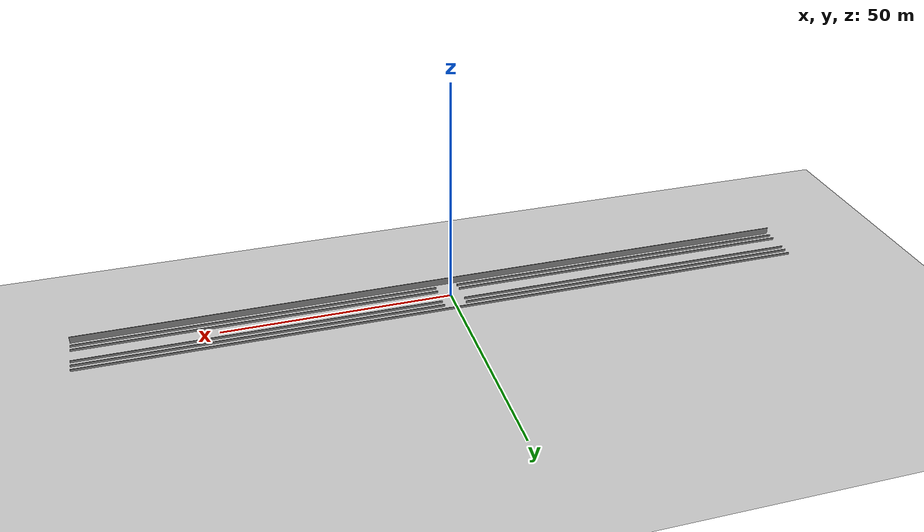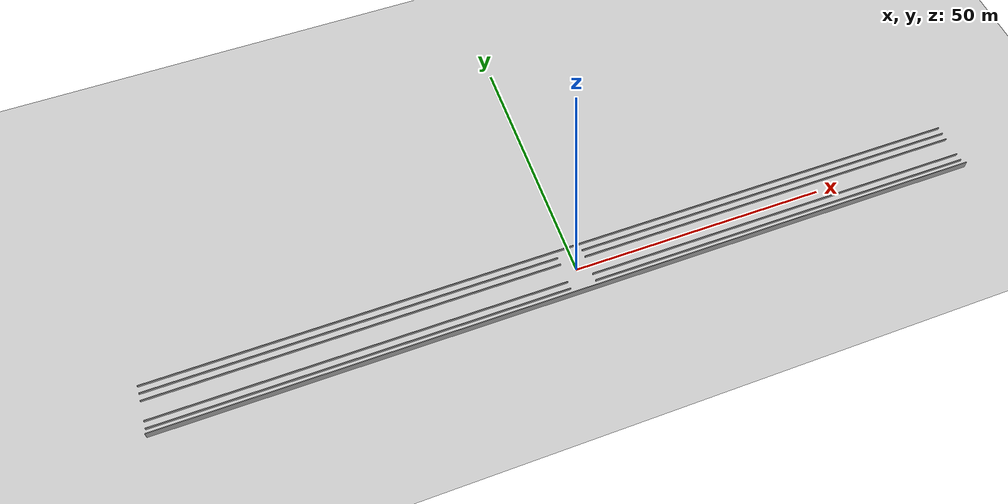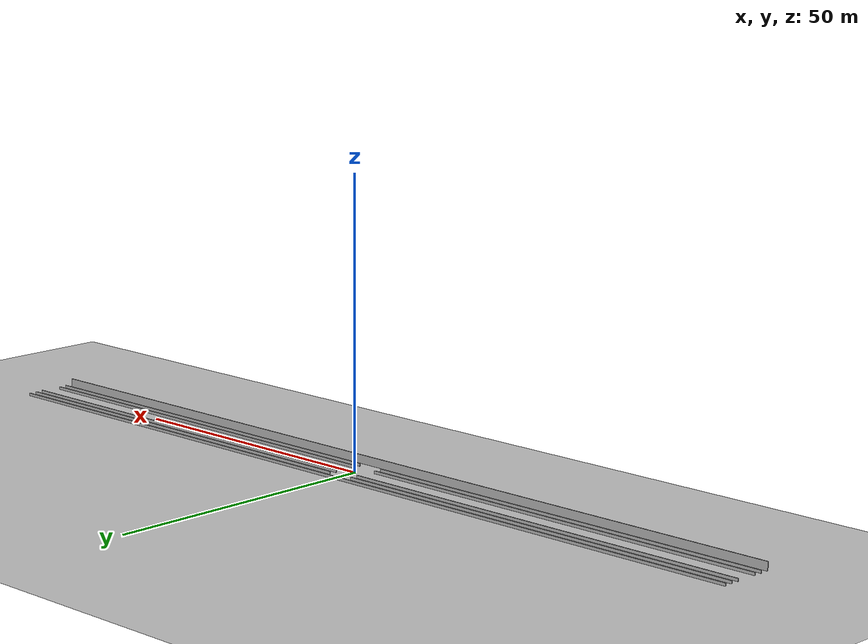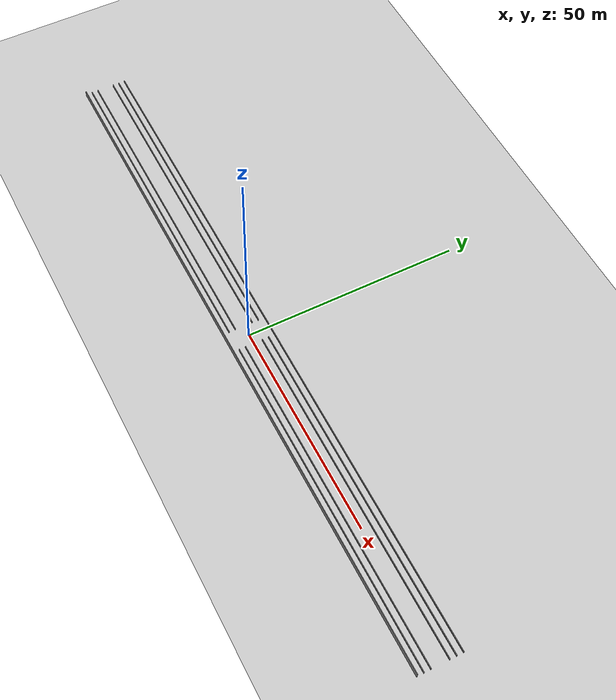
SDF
<?xml version="1.0" ?>
<sdf version="1.5">
  <world name="default">

    <!-- A global light source -->
    <include>
      <uri>model://sun</uri>
	    <pose>0 0 0 0 0 0</pose>
    </include>

    <!-- A ground plane -->
    <include>
      <uri>model://mars</uri>
      <pose>0 0 0 0 0 0</pose>
    </include>

    <include>
      <uri>model://corridor</uri>
      <pose>0 0 0 0 0 0</pose>
    </include>

    <scene>
      <sky>
        <clouds>
          <speed>50</speed>
        </clouds>
      </sky>
        <ambient>0 0 0 1.0</ambient>
        <shadows>0</shadows>
    </scene>

  </world>
</sdf>

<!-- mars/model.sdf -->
<sdf version="1.6">
<model name="mars">
  <static>true</static>
    <link name="link">
      <collision name="collision">
        <geometry>
          <plane>
            <normal>0 0 1</normal>
            <size>100 100</size>
          </plane>
        </geometry>
        <surface>
          <friction>
            <ode>
              <mu>100</mu>
              <mu2>50</mu2>
            </ode>
          </friction>
        </surface>
      </collision>
      <visual name="visual">
        <cast_shadows>false</cast_shadows>
        <geometry>
          <plane>
            <normal>0 0 1</normal>
            <size>100 100</size>
          </plane>
        </geometry>
        <material>
      <script>
        <uri>model://mars/materials/scripts</uri>
        <uri>model://mars/materials/textures</uri>
        <name>mars/Image</name>
      </script>
        </material>
      </visual>
    </link>
  </model>
</sdf>

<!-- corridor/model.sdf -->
<sdf version='1.7'>
  <model name='corridor'>
    <link name='Wall_47'>
      <pose>0 5 0 0 -0 0</pose>
      <self_collide>0</self_collide>
      <enable_wind>0</enable_wind>
      <kinematic>0</kinematic>
      <visual name='Wall_47_Visual'>
        <pose>0 0 0.25 0 -0 0</pose>
        <geometry>
          <box>
            <size>160.15 0.15 0.5</size>
          </box>
        </geometry>
        <material>
          <script>
            <uri>file://media/materials/scripts/gazebo.material</uri>
            <name>Gazebo/Grey</name>
          </script>
          <ambient>1 1 1 1</ambient>
          <shader type='pixel'/>
        </material>
        <meta>
          <layer>0</layer>
        </meta>
        <transparency>0</transparency>
        <cast_shadows>1</cast_shadows>
      </visual>
      <collision name='Wall_47_Collision'>
        <laser_retro>0</laser_retro>
        <max_contacts>10</max_contacts>
        <pose>0 0 0.25 0 -0 0</pose>
        <geometry>
          <box>
            <size>160.15 0.15 0.5</size>
          </box>
        </geometry>
        <surface>
          <friction>
            <ode>
              <mu>1</mu>
              <mu2>1</mu2>
              <fdir1>0 0 0</fdir1>
              <slip1>0</slip1>
              <slip2>0</slip2>
            </ode>
            <torsional>
              <coefficient>1</coefficient>
              <patch_radius>0</patch_radius>
              <surface_radius>0</surface_radius>
              <use_patch_radius>1</use_patch_radius>
              <ode>
                <slip>0</slip>
              </ode>
            </torsional>
          </friction>
          <bounce>
            <restitution_coefficient>0</restitution_coefficient>
            <threshold>1e+06</threshold>
          </bounce>
          <contact>
            <collide_without_contact>0</collide_without_contact>
            <collide_without_contact_bitmask>1</collide_without_contact_bitmask>
            <collide_bitmask>1</collide_bitmask>
            <ode>
              <soft_cfm>0</soft_cfm>
              <soft_erp>0.2</soft_erp>
              <kp>1e+13</kp>
              <kd>1</kd>
              <max_vel>0.01</max_vel>
              <min_depth>0</min_depth>
            </ode>
            <bullet>
              <split_impulse>1</split_impulse>
              <split_impulse_penetration_threshold>-0.01</split_impulse_penetration_threshold>
              <soft_cfm>0</soft_cfm>
              <soft_erp>0.2</soft_erp>
              <kp>1e+13</kp>
              <kd>1</kd>
            </bullet>
          </contact>
        </surface>
      </collision>
    </link>
    <link name='Wall_49'>
      <pose>0 -5 0 0 -0 0</pose>
      <self_collide>0</self_collide>
      <enable_wind>0</enable_wind>
      <kinematic>0</kinematic>
      <visual name='Wall_49_Visual'>
        <pose>0 0 0.75 0 -0 0</pose>
        <geometry>
          <box>
            <size>160.15 0.15 1.5</size>
          </box>
        </geometry>
        <material>
          <script>
            <uri>file://media/materials/scripts/gazebo.material</uri>
            <name>Gazebo/Grey</name>
          </script>
          <ambient>1 1 1 1</ambient>
          <shader type='pixel'/>
        </material>
        <meta>
          <layer>0</layer>
        </meta>
        <transparency>0</transparency>
        <cast_shadows>1</cast_shadows>
      </visual>
      <collision name='Wall_49_Collision'>
        <laser_retro>0</laser_retro>
        <max_contacts>10</max_contacts>
        <pose>0 0 0.75 0 -0 0</pose>
        <geometry>
          <box>
            <size>160.15 0.15 1.5</size>
          </box>
        </geometry>
        <surface>
          <friction>
            <ode>
              <mu>1</mu>
              <mu2>1</mu2>
              <fdir1>0 0 0</fdir1>
              <slip1>0</slip1>
              <slip2>0</slip2>
            </ode>
            <torsional>
              <coefficient>1</coefficient>
              <patch_radius>0</patch_radius>
              <surface_radius>0</surface_radius>
              <use_patch_radius>1</use_patch_radius>
              <ode>
                <slip>0</slip>
              </ode>
            </torsional>
          </friction>
          <bounce>
            <restitution_coefficient>0</restitution_coefficient>
            <threshold>1e+06</threshold>
          </bounce>
          <contact>
            <collide_without_contact>0</collide_without_contact>
            <collide_without_contact_bitmask>1</collide_without_contact_bitmask>
            <collide_bitmask>1</collide_bitmask>
            <ode>
              <soft_cfm>0</soft_cfm>
              <soft_erp>0.2</soft_erp>
              <kp>1e+13</kp>
              <kd>1</kd>
              <max_vel>0.01</max_vel>
              <min_depth>0</min_depth>
            </ode>
            <bullet>
              <split_impulse>1</split_impulse>
              <split_impulse_penetration_threshold>-0.01</split_impulse_penetration_threshold>
              <soft_cfm>0</soft_cfm>
              <soft_erp>0.2</soft_erp>
              <kp>1e+13</kp>
              <kd>1</kd>
            </bullet>
          </contact>
        </surface>
      </collision>
    </link>
    <link name='Wall_51'>
      <pose>-41.25 2 0 0 -0 0</pose>
      <self_collide>0</self_collide>
      <enable_wind>0</enable_wind>
      <kinematic>0</kinematic>
      <visual name='Wall_51_Visual'>
        <pose>0 0 0.25 0 -0 0</pose>
        <geometry>
          <box>
            <size>77.65 0.15 0.5</size>
          </box>
        </geometry>
        <material>
          <script>
            <uri>file://media/materials/scripts/gazebo.material</uri>
            <name>Gazebo/Grey</name>
          </script>
          <ambient>1 1 1 1</ambient>
          <shader type='pixel'/>
        </material>
        <meta>
          <layer>0</layer>
        </meta>
        <transparency>0</transparency>
        <cast_shadows>1</cast_shadows>
      </visual>
      <collision name='Wall_51_Collision'>
        <laser_retro>0</laser_retro>
        <max_contacts>10</max_contacts>
        <pose>0 0 0.25 0 -0 0</pose>
        <geometry>
          <box>
            <size>77.65 0.15 0.5</size>
          </box>
        </geometry>
        <surface>
          <friction>
            <ode>
              <mu>1</mu>
              <mu2>1</mu2>
              <fdir1>0 0 0</fdir1>
              <slip1>0</slip1>
              <slip2>0</slip2>
            </ode>
            <torsional>
              <coefficient>1</coefficient>
              <patch_radius>0</patch_radius>
              <surface_radius>0</surface_radius>
              <use_patch_radius>1</use_patch_radius>
              <ode>
                <slip>0</slip>
              </ode>
            </torsional>
          </friction>
          <bounce>
            <restitution_coefficient>0</restitution_coefficient>
            <threshold>1e+06</threshold>
          </bounce>
          <contact>
            <collide_without_contact>0</collide_without_contact>
            <collide_without_contact_bitmask>1</collide_without_contact_bitmask>
            <collide_bitmask>1</collide_bitmask>
            <ode>
              <soft_cfm>0</soft_cfm>
              <soft_erp>0.2</soft_erp>
              <kp>1e+13</kp>
              <kd>1</kd>
              <max_vel>0.01</max_vel>
              <min_depth>0</min_depth>
            </ode>
            <bullet>
              <split_impulse>1</split_impulse>
              <split_impulse_penetration_threshold>-0.01</split_impulse_penetration_threshold>
              <soft_cfm>0</soft_cfm>
              <soft_erp>0.2</soft_erp>
              <kp>1e+13</kp>
              <kd>1</kd>
            </bullet>
          </contact>
        </surface>
      </collision>
    </link>
    <link name='Wall_53'>
      <pose>41.25 2 0 0 -0 0</pose>
      <self_collide>0</self_collide>
      <enable_wind>0</enable_wind>
      <kinematic>0</kinematic>
      <visual name='Wall_53_Visual'>
        <pose>0 0 0.25 0 -0 0</pose>
        <geometry>
          <box>
            <size>77.65 0.15 0.5</size>
          </box>
        </geometry>
        <material>
          <script>
            <uri>file://media/materials/scripts/gazebo.material</uri>
            <name>Gazebo/Grey</name>
          </script>
          <ambient>1 1 1 1</ambient>
          <shader type='pixel'/>
        </material>
        <meta>
          <layer>0</layer>
        </meta>
        <transparency>0</transparency>
        <cast_shadows>1</cast_shadows>
      </visual>
      <collision name='Wall_53_Collision'>
        <laser_retro>0</laser_retro>
        <max_contacts>10</max_contacts>
        <pose>0 0 0.25 0 -0 0</pose>
        <geometry>
          <box>
            <size>77.65 0.15 0.5</size>
          </box>
        </geometry>
        <surface>
          <friction>
            <ode>
              <mu>1</mu>
              <mu2>1</mu2>
              <fdir1>0 0 0</fdir1>
              <slip1>0</slip1>
              <slip2>0</slip2>
            </ode>
            <torsional>
              <coefficient>1</coefficient>
              <patch_radius>0</patch_radius>
              <surface_radius>0</surface_radius>
              <use_patch_radius>1</use_patch_radius>
              <ode>
                <slip>0</slip>
              </ode>
            </torsional>
          </friction>
          <bounce>
            <restitution_coefficient>0</restitution_coefficient>
            <threshold>1e+06</threshold>
          </bounce>
          <contact>
            <collide_without_contact>0</collide_without_contact>
            <collide_without_contact_bitmask>1</collide_without_contact_bitmask>
            <collide_bitmask>1</collide_bitmask>
            <ode>
              <soft_cfm>0</soft_cfm>
              <soft_erp>0.2</soft_erp>
              <kp>1e+13</kp>
              <kd>1</kd>
              <max_vel>0.01</max_vel>
              <min_depth>0</min_depth>
            </ode>
            <bullet>
              <split_impulse>1</split_impulse>
              <split_impulse_penetration_threshold>-0.01</split_impulse_penetration_threshold>
              <soft_cfm>0</soft_cfm>
              <soft_erp>0.2</soft_erp>
              <kp>1e+13</kp>
              <kd>1</kd>
            </bullet>
          </contact>
        </surface>
      </collision>
    </link>
    <link name='Wall_55'>
      <pose>-41.25 -3.5 0 0 -0 0</pose>
      <self_collide>0</self_collide>
      <enable_wind>0</enable_wind>
      <kinematic>0</kinematic>
      <visual name='Wall_55_Visual'>
        <pose>0 0 0.25 0 -0 0</pose>
        <geometry>
          <box>
            <size>77.65 0.15 0.5</size>
          </box>
        </geometry>
        <material>
          <script>
            <uri>file://media/materials/scripts/gazebo.material</uri>
            <name>Gazebo/Grey</name>
          </script>
          <ambient>1 1 1 1</ambient>
          <shader type='pixel'/>
        </material>
        <meta>
          <layer>0</layer>
        </meta>
        <transparency>0</transparency>
        <cast_shadows>1</cast_shadows>
      </visual>
      <collision name='Wall_55_Collision'>
        <laser_retro>0</laser_retro>
        <max_contacts>10</max_contacts>
        <pose>0 0 0.25 0 -0 0</pose>
        <geometry>
          <box>
            <size>77.65 0.15 0.5</size>
          </box>
        </geometry>
        <surface>
          <friction>
            <ode>
              <mu>1</mu>
              <mu2>1</mu2>
              <fdir1>0 0 0</fdir1>
              <slip1>0</slip1>
              <slip2>0</slip2>
            </ode>
            <torsional>
              <coefficient>1</coefficient>
              <patch_radius>0</patch_radius>
              <surface_radius>0</surface_radius>
              <use_patch_radius>1</use_patch_radius>
              <ode>
                <slip>0</slip>
              </ode>
            </torsional>
          </friction>
          <bounce>
            <restitution_coefficient>0</restitution_coefficient>
            <threshold>1e+06</threshold>
          </bounce>
          <contact>
            <collide_without_contact>0</collide_without_contact>
            <collide_without_contact_bitmask>1</collide_without_contact_bitmask>
            <collide_bitmask>1</collide_bitmask>
            <ode>
              <soft_cfm>0</soft_cfm>
              <soft_erp>0.2</soft_erp>
              <kp>1e+13</kp>
              <kd>1</kd>
              <max_vel>0.01</max_vel>
              <min_depth>0</min_depth>
            </ode>
            <bullet>
              <split_impulse>1</split_impulse>
              <split_impulse_penetration_threshold>-0.01</split_impulse_penetration_threshold>
              <soft_cfm>0</soft_cfm>
              <soft_erp>0.2</soft_erp>
              <kp>1e+13</kp>
              <kd>1</kd>
            </bullet>
          </contact>
        </surface>
      </collision>
    </link>
    <link name='Wall_57'>
      <pose>41.25 -3.5 0 0 -0 0</pose>
      <self_collide>0</self_collide>
      <enable_wind>0</enable_wind>
      <kinematic>0</kinematic>
      <visual name='Wall_57_Visual'>
        <pose>0 0 0.25 0 -0 0</pose>
        <geometry>
          <box>
            <size>77.65 0.15 0.5</size>
          </box>
        </geometry>
        <material>
          <script>
            <uri>file://media/materials/scripts/gazebo.material</uri>
            <name>Gazebo/Grey</name>
          </script>
          <ambient>1 1 1 1</ambient>
          <shader type='pixel'/>
        </material>
        <meta>
          <layer>0</layer>
        </meta>
        <transparency>0</transparency>
        <cast_shadows>1</cast_shadows>
      </visual>
      <collision name='Wall_57_Collision'>
        <laser_retro>0</laser_retro>
        <max_contacts>10</max_contacts>
        <pose>0 0 0.25 0 -0 0</pose>
        <geometry>
          <box>
            <size>77.65 0.15 0.5</size>
          </box>
        </geometry>
        <surface>
          <friction>
            <ode>
              <mu>1</mu>
              <mu2>1</mu2>
              <fdir1>0 0 0</fdir1>
              <slip1>0</slip1>
              <slip2>0</slip2>
            </ode>
            <torsional>
              <coefficient>1</coefficient>
              <patch_radius>0</patch_radius>
              <surface_radius>0</surface_radius>
              <use_patch_radius>1</use_patch_radius>
              <ode>
                <slip>0</slip>
              </ode>
            </torsional>
          </friction>
          <bounce>
            <restitution_coefficient>0</restitution_coefficient>
            <threshold>1e+06</threshold>
          </bounce>
          <contact>
            <collide_without_contact>0</collide_without_contact>
            <collide_without_contact_bitmask>1</collide_without_contact_bitmask>
            <collide_bitmask>1</collide_bitmask>
            <ode>
              <soft_cfm>0</soft_cfm>
              <soft_erp>0.2</soft_erp>
              <kp>1e+13</kp>
              <kd>1</kd>
              <max_vel>0.01</max_vel>
              <min_depth>0</min_depth>
            </ode>
            <bullet>
              <split_impulse>1</split_impulse>
              <split_impulse_penetration_threshold>-0.01</split_impulse_penetration_threshold>
              <soft_cfm>0</soft_cfm>
              <soft_erp>0.2</soft_erp>
              <kp>1e+13</kp>
              <kd>1</kd>
            </bullet>
          </contact>
        </surface>
      </collision>
    </link>
    <link name='Wall_59'>
      <pose>-41.25 3.5 0 0 -0 0</pose>
      <self_collide>0</self_collide>
      <enable_wind>0</enable_wind>
      <kinematic>0</kinematic>
      <visual name='Wall_59_Visual'>
        <pose>0 0 0.25 0 -0 0</pose>
        <geometry>
          <box>
            <size>77.65 0.15 0.5</size>
          </box>
        </geometry>
        <material>
          <script>
            <uri>file://media/materials/scripts/gazebo.material</uri>
            <name>Gazebo/Grey</name>
          </script>
          <ambient>1 1 1 1</ambient>
          <shader type='pixel'/>
        </material>
        <meta>
          <layer>0</layer>
        </meta>
        <transparency>0</transparency>
        <cast_shadows>1</cast_shadows>
      </visual>
      <collision name='Wall_59_Collision'>
        <laser_retro>0</laser_retro>
        <max_contacts>10</max_contacts>
        <pose>0 0 0.25 0 -0 0</pose>
        <geometry>
          <box>
            <size>77.65 0.15 0.5</size>
          </box>
        </geometry>
        <surface>
          <friction>
            <ode>
              <mu>1</mu>
              <mu2>1</mu2>
              <fdir1>0 0 0</fdir1>
              <slip1>0</slip1>
              <slip2>0</slip2>
            </ode>
            <torsional>
              <coefficient>1</coefficient>
              <patch_radius>0</patch_radius>
              <surface_radius>0</surface_radius>
              <use_patch_radius>1</use_patch_radius>
              <ode>
                <slip>0</slip>
              </ode>
            </torsional>
          </friction>
          <bounce>
            <restitution_coefficient>0</restitution_coefficient>
            <threshold>1e+06</threshold>
          </bounce>
          <contact>
            <collide_without_contact>0</collide_without_contact>
            <collide_without_contact_bitmask>1</collide_without_contact_bitmask>
            <collide_bitmask>1</collide_bitmask>
            <ode>
              <soft_cfm>0</soft_cfm>
              <soft_erp>0.2</soft_erp>
              <kp>1e+13</kp>
              <kd>1</kd>
              <max_vel>0.01</max_vel>
              <min_depth>0</min_depth>
            </ode>
            <bullet>
              <split_impulse>1</split_impulse>
              <split_impulse_penetration_threshold>-0.01</split_impulse_penetration_threshold>
              <soft_cfm>0</soft_cfm>
              <soft_erp>0.2</soft_erp>
              <kp>1e+13</kp>
              <kd>1</kd>
            </bullet>
          </contact>
        </surface>
      </collision>
    </link>
    <link name='Wall_61'>
      <pose>41.25 3.5 0 0 -0 0</pose>
      <self_collide>0</self_collide>
      <enable_wind>0</enable_wind>
      <kinematic>0</kinematic>
      <visual name='Wall_61_Visual'>
        <pose>0 0 0.25 0 -0 0</pose>
        <geometry>
          <box>
            <size>77.65 0.15 0.5</size>
          </box>
        </geometry>
        <material>
          <script>
            <uri>file://media/materials/scripts/gazebo.material</uri>
            <name>Gazebo/Grey</name>
          </script>
          <ambient>1 1 1 1</ambient>
          <shader type='pixel'/>
        </material>
        <meta>
          <layer>0</layer>
        </meta>
        <transparency>0</transparency>
        <cast_shadows>1</cast_shadows>
      </visual>
      <collision name='Wall_61_Collision'>
        <laser_retro>0</laser_retro>
        <max_contacts>10</max_contacts>
        <pose>0 0 0.25 0 -0 0</pose>
        <geometry>
          <box>
            <size>77.65 0.15 0.5</size>
          </box>
        </geometry>
        <surface>
          <friction>
            <ode>
              <mu>1</mu>
              <mu2>1</mu2>
              <fdir1>0 0 0</fdir1>
              <slip1>0</slip1>
              <slip2>0</slip2>
            </ode>
            <torsional>
              <coefficient>1</coefficient>
              <patch_radius>0</patch_radius>
              <surface_radius>0</surface_radius>
              <use_patch_radius>1</use_patch_radius>
              <ode>
                <slip>0</slip>
              </ode>
            </torsional>
          </friction>
          <bounce>
            <restitution_coefficient>0</restitution_coefficient>
            <threshold>1e+06</threshold>
          </bounce>
          <contact>
            <collide_without_contact>0</collide_without_contact>
            <collide_without_contact_bitmask>1</collide_without_contact_bitmask>
            <collide_bitmask>1</collide_bitmask>
            <ode>
              <soft_cfm>0</soft_cfm>
              <soft_erp>0.2</soft_erp>
              <kp>1e+13</kp>
              <kd>1</kd>
              <max_vel>0.01</max_vel>
              <min_depth>0</min_depth>
            </ode>
            <bullet>
              <split_impulse>1</split_impulse>
              <split_impulse_penetration_threshold>-0.01</split_impulse_penetration_threshold>
              <soft_cfm>0</soft_cfm>
              <soft_erp>0.2</soft_erp>
              <kp>1e+13</kp>
              <kd>1</kd>
            </bullet>
          </contact>
        </surface>
      </collision>
    </link>
    <link name='Wall_64'>
      <pose>-41.25 -2 0 0 -0 0</pose>
      <self_collide>0</self_collide>
      <enable_wind>0</enable_wind>
      <kinematic>0</kinematic>
      <visual name='Wall_64_Visual'>
        <pose>0 0 0.25 0 -0 0</pose>
        <geometry>
          <box>
            <size>77.65 0.15 0.5</size>
          </box>
        </geometry>
        <material>
          <script>
            <uri>file://media/materials/scripts/gazebo.material</uri>
            <name>Gazebo/Grey</name>
          </script>
          <ambient>1 1 1 1</ambient>
          <shader type='pixel'/>
        </material>
        <meta>
          <layer>0</layer>
        </meta>
        <transparency>0</transparency>
        <cast_shadows>1</cast_shadows>
      </visual>
      <collision name='Wall_64_Collision'>
        <laser_retro>0</laser_retro>
        <max_contacts>10</max_contacts>
        <pose>0 0 0.25 0 -0 0</pose>
        <geometry>
          <box>
            <size>77.65 0.15 0.5</size>
          </box>
        </geometry>
        <surface>
          <friction>
            <ode>
              <mu>1</mu>
              <mu2>1</mu2>
              <fdir1>0 0 0</fdir1>
              <slip1>0</slip1>
              <slip2>0</slip2>
            </ode>
            <torsional>
              <coefficient>1</coefficient>
              <patch_radius>0</patch_radius>
              <surface_radius>0</surface_radius>
              <use_patch_radius>1</use_patch_radius>
              <ode>
                <slip>0</slip>
              </ode>
            </torsional>
          </friction>
          <bounce>
            <restitution_coefficient>0</restitution_coefficient>
            <threshold>1e+06</threshold>
          </bounce>
          <contact>
            <collide_without_contact>0</collide_without_contact>
            <collide_without_contact_bitmask>1</collide_without_contact_bitmask>
            <collide_bitmask>1</collide_bitmask>
            <ode>
              <soft_cfm>0</soft_cfm>
              <soft_erp>0.2</soft_erp>
              <kp>1e+13</kp>
              <kd>1</kd>
              <max_vel>0.01</max_vel>
              <min_depth>0</min_depth>
            </ode>
            <bullet>
              <split_impulse>1</split_impulse>
              <split_impulse_penetration_threshold>-0.01</split_impulse_penetration_threshold>
              <soft_cfm>0</soft_cfm>
              <soft_erp>0.2</soft_erp>
              <kp>1e+13</kp>
              <kd>1</kd>
            </bullet>
          </contact>
        </surface>
      </collision>
    </link>
    <link name='Wall_66'>
      <pose>41.25 -2 0 0 -0 0</pose>
      <self_collide>0</self_collide>
      <enable_wind>0</enable_wind>
      <kinematic>0</kinematic>
      <visual name='Wall_66_Visual'>
        <pose>0 0 0.25 0 -0 0</pose>
        <geometry>
          <box>
            <size>77.65 0.15 0.5</size>
          </box>
        </geometry>
        <material>
          <script>
            <uri>file://media/materials/scripts/gazebo.material</uri>
            <name>Gazebo/Grey</name>
          </script>
          <ambient>1 1 1 1</ambient>
          <shader type='pixel'/>
        </material>
        <meta>
          <layer>0</layer>
        </meta>
        <transparency>0</transparency>
        <cast_shadows>1</cast_shadows>
      </visual>
      <collision name='Wall_66_Collision'>
        <laser_retro>0</laser_retro>
        <max_contacts>10</max_contacts>
        <pose>0 0 0.25 0 -0 0</pose>
        <geometry>
          <box>
            <size>77.65 0.15 0.5</size>
          </box>
        </geometry>
        <surface>
          <friction>
            <ode>
              <mu>1</mu>
              <mu2>1</mu2>
              <fdir1>0 0 0</fdir1>
              <slip1>0</slip1>
              <slip2>0</slip2>
            </ode>
            <torsional>
              <coefficient>1</coefficient>
              <patch_radius>0</patch_radius>
              <surface_radius>0</surface_radius>
              <use_patch_radius>1</use_patch_radius>
              <ode>
                <slip>0</slip>
              </ode>
            </torsional>
          </friction>
          <bounce>
            <restitution_coefficient>0</restitution_coefficient>
            <threshold>1e+06</threshold>
          </bounce>
          <contact>
            <collide_without_contact>0</collide_without_contact>
            <collide_without_contact_bitmask>1</collide_without_contact_bitmask>
            <collide_bitmask>1</collide_bitmask>
            <ode>
              <soft_cfm>0</soft_cfm>
              <soft_erp>0.2</soft_erp>
              <kp>1e+13</kp>
              <kd>1</kd>
              <max_vel>0.01</max_vel>
              <min_depth>0</min_depth>
            </ode>
            <bullet>
              <split_impulse>1</split_impulse>
              <split_impulse_penetration_threshold>-0.01</split_impulse_penetration_threshold>
              <soft_cfm>0</soft_cfm>
              <soft_erp>0.2</soft_erp>
              <kp>1e+13</kp>
              <kd>1</kd>
            </bullet>
          </contact>
        </surface>
      </collision>
    </link>
    <static>1</static>
    <allow_auto_disable>1</allow_auto_disable>
  </model>
</sdf>
